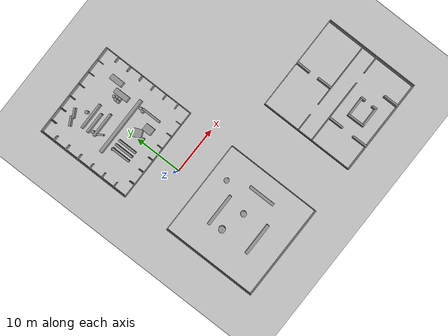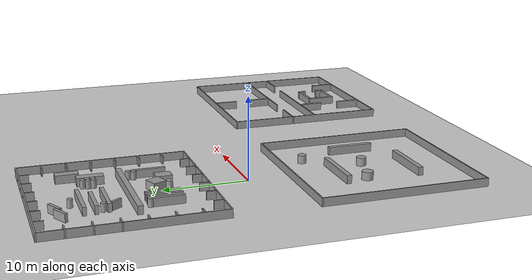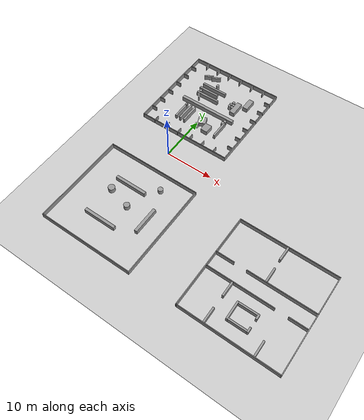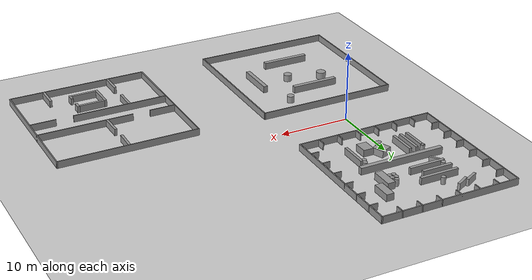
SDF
<sdf version="1.6">
 <world name="martha_training_islands">
  <include><uri>model://sun</uri></include>
  <include><uri>model://ground_plane</uri></include>
  <model name="hall__hall_obstacles">
   <pose>0 15 0 0 0 0</pose>
   <static>true</static>
   <link name="body">
    <collision name="col_0">
     <pose>0.0000 -10.0000 0.5000 0 0 0.00000</pose>
     <geometry><box><size>20.1500 0.1500 1.0000</size></box></geometry>
    </collision>
    <visual name="vis_0">
     <pose>0.0000 -10.0000 0.5000 0 0 0.00000</pose>
     <geometry><box><size>20.1500 0.1500 1.0000</size></box></geometry>
     <material>
      <script><uri>file://media/materials/scripts/gazebo.material</uri><name>Gazebo/Grey</name></script>
     </material>
    </visual>
    <collision name="col_1">
     <pose>10.0000 0.0000 0.5000 0 0 1.57080</pose>
     <geometry><box><size>20.1500 0.1500 1.0000</size></box></geometry>
    </collision>
    <visual name="vis_1">
     <pose>10.0000 0.0000 0.5000 0 0 1.57080</pose>
     <geometry><box><size>20.1500 0.1500 1.0000</size></box></geometry>
     <material>
      <script><uri>file://media/materials/scripts/gazebo.material</uri><name>Gazebo/Grey</name></script>
     </material>
    </visual>
    <collision name="col_2">
     <pose>0.0000 10.0000 0.5000 0 0 3.14159</pose>
     <geometry><box><size>20.1500 0.1500 1.0000</size></box></geometry>
    </collision>
    <visual name="vis_2">
     <pose>0.0000 10.0000 0.5000 0 0 3.14159</pose>
     <geometry><box><size>20.1500 0.1500 1.0000</size></box></geometry>
     <material>
      <script><uri>file://media/materials/scripts/gazebo.material</uri><name>Gazebo/Grey</name></script>
     </material>
    </visual>
    <collision name="col_3">
     <pose>-10.0000 0.0000 0.5000 0 0 -1.57080</pose>
     <geometry><box><size>20.1500 0.1500 1.0000</size></box></geometry>
    </collision>
    <visual name="vis_3">
     <pose>-10.0000 0.0000 0.5000 0 0 -1.57080</pose>
     <geometry><box><size>20.1500 0.1500 1.0000</size></box></geometry>
     <material>
      <script><uri>file://media/materials/scripts/gazebo.material</uri><name>Gazebo/Grey</name></script>
     </material>
    </visual>
    <collision name="col_4">
     <pose>-7.1429 -9.4500 0.5000 0 0 1.57080</pose>
     <geometry><box><size>1.2500 0.1500 1.0000</size></box></geometry>
    </collision>
    <visual name="vis_4">
     <pose>-7.1429 -9.4500 0.5000 0 0 1.57080</pose>
     <geometry><box><size>1.2500 0.1500 1.0000</size></box></geometry>
     <material>
      <script><uri>file://media/materials/scripts/gazebo.material</uri><name>Gazebo/Grey</name></script>
     </material>
    </visual>
    <collision name="col_5">
     <pose>-7.1429 9.4500 0.5000 0 0 -1.57080</pose>
     <geometry><box><size>1.2500 0.1500 1.0000</size></box></geometry>
    </collision>
    <visual name="vis_5">
     <pose>-7.1429 9.4500 0.5000 0 0 -1.57080</pose>
     <geometry><box><size>1.2500 0.1500 1.0000</size></box></geometry>
     <material>
      <script><uri>file://media/materials/scripts/gazebo.material</uri><name>Gazebo/Grey</name></script>
     </material>
    </visual>
    <collision name="col_6">
     <pose>-9.4500 -7.1429 0.5000 0 0 0.00000</pose>
     <geometry><box><size>1.2500 0.1500 1.0000</size></box></geometry>
    </collision>
    <visual name="vis_6">
     <pose>-9.4500 -7.1429 0.5000 0 0 0.00000</pose>
     <geometry><box><size>1.2500 0.1500 1.0000</size></box></geometry>
     <material>
      <script><uri>file://media/materials/scripts/gazebo.material</uri><name>Gazebo/Grey</name></script>
     </material>
    </visual>
    <collision name="col_7">
     <pose>9.4500 -7.1429 0.5000 0 0 3.14159</pose>
     <geometry><box><size>1.2500 0.1500 1.0000</size></box></geometry>
    </collision>
    <visual name="vis_7">
     <pose>9.4500 -7.1429 0.5000 0 0 3.14159</pose>
     <geometry><box><size>1.2500 0.1500 1.0000</size></box></geometry>
     <material>
      <script><uri>file://media/materials/scripts/gazebo.material</uri><name>Gazebo/Grey</name></script>
     </material>
    </visual>
    <collision name="col_8">
     <pose>-4.2857 -9.4500 0.5000 0 0 1.57080</pose>
     <geometry><box><size>1.2500 0.1500 1.0000</size></box></geometry>
    </collision>
    <visual name="vis_8">
     <pose>-4.2857 -9.4500 0.5000 0 0 1.57080</pose>
     <geometry><box><size>1.2500 0.1500 1.0000</size></box></geometry>
     <material>
      <script><uri>file://media/materials/scripts/gazebo.material</uri><name>Gazebo/Grey</name></script>
     </material>
    </visual>
    <collision name="col_9">
     <pose>-4.2857 9.4500 0.5000 0 0 -1.57080</pose>
     <geometry><box><size>1.2500 0.1500 1.0000</size></box></geometry>
    </collision>
    <visual name="vis_9">
     <pose>-4.2857 9.4500 0.5000 0 0 -1.57080</pose>
     <geometry><box><size>1.2500 0.1500 1.0000</size></box></geometry>
     <material>
      <script><uri>file://media/materials/scripts/gazebo.material</uri><name>Gazebo/Grey</name></script>
     </material>
    </visual>
    <collision name="col_10">
     <pose>-9.4500 -4.2857 0.5000 0 0 0.00000</pose>
     <geometry><box><size>1.2500 0.1500 1.0000</size></box></geometry>
    </collision>
    <visual name="vis_10">
     <pose>-9.4500 -4.2857 0.5000 0 0 0.00000</pose>
     <geometry><box><size>1.2500 0.1500 1.0000</size></box></geometry>
     <material>
      <script><uri>file://media/materials/scripts/gazebo.material</uri><name>Gazebo/Grey</name></script>
     </material>
    </visual>
    <collision name="col_11">
     <pose>9.4500 -4.2857 0.5000 0 0 3.14159</pose>
     <geometry><box><size>1.2500 0.1500 1.0000</size></box></geometry>
    </collision>
    <visual name="vis_11">
     <pose>9.4500 -4.2857 0.5000 0 0 3.14159</pose>
     <geometry><box><size>1.2500 0.1500 1.0000</size></box></geometry>
     <material>
      <script><uri>file://media/materials/scripts/gazebo.material</uri><name>Gazebo/Grey</name></script>
     </material>
    </visual>
    <collision name="col_12">
     <pose>-1.4286 -9.4500 0.5000 0 0 1.57080</pose>
     <geometry><box><size>1.2500 0.1500 1.0000</size></box></geometry>
    </collision>
    <visual name="vis_12">
     <pose>-1.4286 -9.4500 0.5000 0 0 1.57080</pose>
     <geometry><box><size>1.2500 0.1500 1.0000</size></box></geometry>
     <material>
      <script><uri>file://media/materials/scripts/gazebo.material</uri><name>Gazebo/Grey</name></script>
     </material>
    </visual>
    <collision name="col_13">
     <pose>-1.4286 9.4500 0.5000 0 0 -1.57080</pose>
     <geometry><box><size>1.2500 0.1500 1.0000</size></box></geometry>
    </collision>
    <visual name="vis_13">
     <pose>-1.4286 9.4500 0.5000 0 0 -1.57080</pose>
     <geometry><box><size>1.2500 0.1500 1.0000</size></box></geometry>
     <material>
      <script><uri>file://media/materials/scripts/gazebo.material</uri><name>Gazebo/Grey</name></script>
     </material>
    </visual>
    <collision name="col_14">
     <pose>-9.4500 -1.4286 0.5000 0 0 0.00000</pose>
     <geometry><box><size>1.2500 0.1500 1.0000</size></box></geometry>
    </collision>
    <visual name="vis_14">
     <pose>-9.4500 -1.4286 0.5000 0 0 0.00000</pose>
     <geometry><box><size>1.2500 0.1500 1.0000</size></box></geometry>
     <material>
      <script><uri>file://media/materials/scripts/gazebo.material</uri><name>Gazebo/Grey</name></script>
     </material>
    </visual>
    <collision name="col_15">
     <pose>9.4500 -1.4286 0.5000 0 0 3.14159</pose>
     <geometry><box><size>1.2500 0.1500 1.0000</size></box></geometry>
    </collision>
    <visual name="vis_15">
     <pose>9.4500 -1.4286 0.5000 0 0 3.14159</pose>
     <geometry><box><size>1.2500 0.1500 1.0000</size></box></geometry>
     <material>
      <script><uri>file://media/materials/scripts/gazebo.material</uri><name>Gazebo/Grey</name></script>
     </material>
    </visual>
    <collision name="col_16">
     <pose>1.4286 -9.4500 0.5000 0 0 1.57080</pose>
     <geometry><box><size>1.2500 0.1500 1.0000</size></box></geometry>
    </collision>
    <visual name="vis_16">
     <pose>1.4286 -9.4500 0.5000 0 0 1.57080</pose>
     <geometry><box><size>1.2500 0.1500 1.0000</size></box></geometry>
     <material>
      <script><uri>file://media/materials/scripts/gazebo.material</uri><name>Gazebo/Grey</name></script>
     </material>
    </visual>
    <collision name="col_17">
     <pose>1.4286 9.4500 0.5000 0 0 -1.57080</pose>
     <geometry><box><size>1.2500 0.1500 1.0000</size></box></geometry>
    </collision>
    <visual name="vis_17">
     <pose>1.4286 9.4500 0.5000 0 0 -1.57080</pose>
     <geometry><box><size>1.2500 0.1500 1.0000</size></box></geometry>
     <material>
      <script><uri>file://media/materials/scripts/gazebo.material</uri><name>Gazebo/Grey</name></script>
     </material>
    </visual>
    <collision name="col_18">
     <pose>-9.4500 1.4286 0.5000 0 0 0.00000</pose>
     <geometry><box><size>1.2500 0.1500 1.0000</size></box></geometry>
    </collision>
    <visual name="vis_18">
     <pose>-9.4500 1.4286 0.5000 0 0 0.00000</pose>
     <geometry><box><size>1.2500 0.1500 1.0000</size></box></geometry>
     <material>
      <script><uri>file://media/materials/scripts/gazebo.material</uri><name>Gazebo/Grey</name></script>
     </material>
    </visual>
    <collision name="col_19">
     <pose>9.4500 1.4286 0.5000 0 0 3.14159</pose>
     <geometry><box><size>1.2500 0.1500 1.0000</size></box></geometry>
    </collision>
    <visual name="vis_19">
     <pose>9.4500 1.4286 0.5000 0 0 3.14159</pose>
     <geometry><box><size>1.2500 0.1500 1.0000</size></box></geometry>
     <material>
      <script><uri>file://media/materials/scripts/gazebo.material</uri><name>Gazebo/Grey</name></script>
     </material>
    </visual>
    <collision name="col_20">
     <pose>4.2857 -9.4500 0.5000 0 0 1.57080</pose>
     <geometry><box><size>1.2500 0.1500 1.0000</size></box></geometry>
    </collision>
    <visual name="vis_20">
     <pose>4.2857 -9.4500 0.5000 0 0 1.57080</pose>
     <geometry><box><size>1.2500 0.1500 1.0000</size></box></geometry>
     <material>
      <script><uri>file://media/materials/scripts/gazebo.material</uri><name>Gazebo/Grey</name></script>
     </material>
    </visual>
    <collision name="col_21">
     <pose>4.2857 9.4500 0.5000 0 0 -1.57080</pose>
     <geometry><box><size>1.2500 0.1500 1.0000</size></box></geometry>
    </collision>
    <visual name="vis_21">
     <pose>4.2857 9.4500 0.5000 0 0 -1.57080</pose>
     <geometry><box><size>1.2500 0.1500 1.0000</size></box></geometry>
     <material>
      <script><uri>file://media/materials/scripts/gazebo.material</uri><name>Gazebo/Grey</name></script>
     </material>
    </visual>
    <collision name="col_22">
     <pose>-9.4500 4.2857 0.5000 0 0 0.00000</pose>
     <geometry><box><size>1.2500 0.1500 1.0000</size></box></geometry>
    </collision>
    <visual name="vis_22">
     <pose>-9.4500 4.2857 0.5000 0 0 0.00000</pose>
     <geometry><box><size>1.2500 0.1500 1.0000</size></box></geometry>
     <material>
      <script><uri>file://media/materials/scripts/gazebo.material</uri><name>Gazebo/Grey</name></script>
     </material>
    </visual>
    <collision name="col_23">
     <pose>9.4500 4.2857 0.5000 0 0 3.14159</pose>
     <geometry><box><size>1.2500 0.1500 1.0000</size></box></geometry>
    </collision>
    <visual name="vis_23">
     <pose>9.4500 4.2857 0.5000 0 0 3.14159</pose>
     <geometry><box><size>1.2500 0.1500 1.0000</size></box></geometry>
     <material>
      <script><uri>file://media/materials/scripts/gazebo.material</uri><name>Gazebo/Grey</name></script>
     </material>
    </visual>
    <collision name="col_24">
     <pose>7.1429 -9.4500 0.5000 0 0 1.57080</pose>
     <geometry><box><size>1.2500 0.1500 1.0000</size></box></geometry>
    </collision>
    <visual name="vis_24">
     <pose>7.1429 -9.4500 0.5000 0 0 1.57080</pose>
     <geometry><box><size>1.2500 0.1500 1.0000</size></box></geometry>
     <material>
      <script><uri>file://media/materials/scripts/gazebo.material</uri><name>Gazebo/Grey</name></script>
     </material>
    </visual>
    <collision name="col_25">
     <pose>7.1429 9.4500 0.5000 0 0 -1.57080</pose>
     <geometry><box><size>1.2500 0.1500 1.0000</size></box></geometry>
    </collision>
    <visual name="vis_25">
     <pose>7.1429 9.4500 0.5000 0 0 -1.57080</pose>
     <geometry><box><size>1.2500 0.1500 1.0000</size></box></geometry>
     <material>
      <script><uri>file://media/materials/scripts/gazebo.material</uri><name>Gazebo/Grey</name></script>
     </material>
    </visual>
    <collision name="col_26">
     <pose>-9.4500 7.1429 0.5000 0 0 0.00000</pose>
     <geometry><box><size>1.2500 0.1500 1.0000</size></box></geometry>
    </collision>
    <visual name="vis_26">
     <pose>-9.4500 7.1429 0.5000 0 0 0.00000</pose>
     <geometry><box><size>1.2500 0.1500 1.0000</size></box></geometry>
     <material>
      <script><uri>file://media/materials/scripts/gazebo.material</uri><name>Gazebo/Grey</name></script>
     </material>
    </visual>
    <collision name="col_27">
     <pose>9.4500 7.1429 0.5000 0 0 3.14159</pose>
     <geometry><box><size>1.2500 0.1500 1.0000</size></box></geometry>
    </collision>
    <visual name="vis_27">
     <pose>9.4500 7.1429 0.5000 0 0 3.14159</pose>
     <geometry><box><size>1.2500 0.1500 1.0000</size></box></geometry>
     <material>
      <script><uri>file://media/materials/scripts/gazebo.material</uri><name>Gazebo/Grey</name></script>
     </material>
    </visual>
    <collision name="col_28">
     <pose>0.0000 -1.2000 0.5000 0 0 0.00000</pose>
     <geometry><box><size>12.4000 0.6400 1.0000</size></box></geometry>
    </collision>
    <visual name="vis_28">
     <pose>0.0000 -1.2000 0.5000 0 0 0.00000</pose>
     <geometry><box><size>12.4000 0.6400 1.0000</size></box></geometry>
     <material>
      <script><uri>file://media/materials/scripts/gazebo.material</uri><name>Gazebo/Grey</name></script>
     </material>
    </visual>
    <collision name="col_29">
     <pose>-2.0000 4.4000 0.5000 0 0 0.00000</pose>
     <geometry><box><size>5.6000 0.4400 1.0000</size></box></geometry>
    </collision>
    <visual name="vis_29">
     <pose>-2.0000 4.4000 0.5000 0 0 0.00000</pose>
     <geometry><box><size>5.6000 0.4400 1.0000</size></box></geometry>
     <material>
      <script><uri>file://media/materials/scripts/gazebo.material</uri><name>Gazebo/Grey</name></script>
     </material>
    </visual>
    <collision name="col_30">
     <pose>-2.6000 3.1000 0.5000 0 0 0.00000</pose>
     <geometry><box><size>4.4000 0.4400 1.0000</size></box></geometry>
    </collision>
    <visual name="vis_30">
     <pose>-2.6000 3.1000 0.5000 0 0 0.00000</pose>
     <geometry><box><size>4.4000 0.4400 1.0000</size></box></geometry>
     <material>
      <script><uri>file://media/materials/scripts/gazebo.material</uri><name>Gazebo/Grey</name></script>
     </material>
    </visual>
    <collision name="col_31">
     <pose>-2.0000 1.7000 0.5000 0 0 0.00000</pose>
     <geometry><box><size>5.2000 0.4400 1.0000</size></box></geometry>
    </collision>
    <visual name="vis_31">
     <pose>-2.0000 1.7000 0.5000 0 0 0.00000</pose>
     <geometry><box><size>5.2000 0.4400 1.0000</size></box></geometry>
     <material>
      <script><uri>file://media/materials/scripts/gazebo.material</uri><name>Gazebo/Grey</name></script>
     </material>
    </visual>
    <collision name="col_32">
     <pose>-5.1000 6.9000 0.5000 0 0 0.48869</pose>
     <geometry><box><size>2.0000 0.3600 1.0000</size></box></geometry>
    </collision>
    <visual name="vis_32">
     <pose>-5.1000 6.9000 0.5000 0 0 0.48869</pose>
     <geometry><box><size>2.0000 0.3600 1.0000</size></box></geometry>
     <material>
      <script><uri>file://media/materials/scripts/gazebo.material</uri><name>Gazebo/Grey</name></script>
     </material>
    </visual>
    <collision name="col_33">
     <pose>-3.5000 7.3000 0.5000 0 0 0.48869</pose>
     <geometry><box><size>2.0000 0.3600 1.0000</size></box></geometry>
    </collision>
    <visual name="vis_33">
     <pose>-3.5000 7.3000 0.5000 0 0 0.48869</pose>
     <geometry><box><size>2.0000 0.3600 1.0000</size></box></geometry>
     <material>
      <script><uri>file://media/materials/scripts/gazebo.material</uri><name>Gazebo/Grey</name></script>
     </material>
    </visual>
    <collision name="col_34">
     <pose>-3.7000 0.9000 0.5000 0 0 -0.95993</pose>
     <geometry><box><size>1.4000 0.3200 1.0000</size></box></geometry>
    </collision>
    <visual name="vis_34">
     <pose>-3.7000 0.9000 0.5000 0 0 -0.95993</pose>
     <geometry><box><size>1.4000 0.3200 1.0000</size></box></geometry>
     <material>
      <script><uri>file://media/materials/scripts/gazebo.material</uri><name>Gazebo/Grey</name></script>
     </material>
    </visual>
    <collision name="col_35">
     <pose>-4.3000 -4.5000 0.5000 0 0 0.00000</pose>
     <geometry><box><size>0.4000 4.0000 1.0000</size></box></geometry>
    </collision>
    <visual name="vis_35">
     <pose>-4.3000 -4.5000 0.5000 0 0 0.00000</pose>
     <geometry><box><size>0.4000 4.0000 1.0000</size></box></geometry>
     <material>
      <script><uri>file://media/materials/scripts/gazebo.material</uri><name>Gazebo/Grey</name></script>
     </material>
    </visual>
    <collision name="col_36">
     <pose>-3.3000 -4.5000 0.5000 0 0 0.00000</pose>
     <geometry><box><size>0.4000 4.0000 1.0000</size></box></geometry>
    </collision>
    <visual name="vis_36">
     <pose>-3.3000 -4.5000 0.5000 0 0 0.00000</pose>
     <geometry><box><size>0.4000 4.0000 1.0000</size></box></geometry>
     <material>
      <script><uri>file://media/materials/scripts/gazebo.material</uri><name>Gazebo/Grey</name></script>
     </material>
    </visual>
    <collision name="col_37">
     <pose>-2.3000 -4.5000 0.5000 0 0 0.00000</pose>
     <geometry><box><size>0.4000 4.0000 1.0000</size></box></geometry>
    </collision>
    <visual name="vis_37">
     <pose>-2.3000 -4.5000 0.5000 0 0 0.00000</pose>
     <geometry><box><size>0.4000 4.0000 1.0000</size></box></geometry>
     <material>
      <script><uri>file://media/materials/scripts/gazebo.material</uri><name>Gazebo/Grey</name></script>
     </material>
    </visual>
    <collision name="col_38">
     <pose>5.1000 -4.5000 0.5000 0 0 0.00000</pose>
     <geometry><box><size>0.4000 4.0000 1.0000</size></box></geometry>
    </collision>
    <visual name="vis_38">
     <pose>5.1000 -4.5000 0.5000 0 0 0.00000</pose>
     <geometry><box><size>0.4000 4.0000 1.0000</size></box></geometry>
     <material>
      <script><uri>file://media/materials/scripts/gazebo.material</uri><name>Gazebo/Grey</name></script>
     </material>
    </visual>
    <collision name="col_39">
     <pose>0.9000 -4.5000 0.5000 0 0 0.38397</pose>
     <geometry><box><size>1.7000 1.7000 1.0000</size></box></geometry>
    </collision>
    <visual name="vis_39">
     <pose>0.9000 -4.5000 0.5000 0 0 0.38397</pose>
     <geometry><box><size>1.7000 1.7000 1.0000</size></box></geometry>
     <material>
      <script><uri>file://media/materials/scripts/gazebo.material</uri><name>Gazebo/Grey</name></script>
     </material>
    </visual>
    <collision name="col_40">
     <pose>2.7000 -5.7000 0.5000 0 0 0.00000</pose>
     <geometry><box><size>1.5000 1.9000 1.0000</size></box></geometry>
    </collision>
    <visual name="vis_40">
     <pose>2.7000 -5.7000 0.5000 0 0 0.00000</pose>
     <geometry><box><size>1.5000 1.9000 1.0000</size></box></geometry>
     <material>
      <script><uri>file://media/materials/scripts/gazebo.material</uri><name>Gazebo/Grey</name></script>
     </material>
    </visual>
    <collision name="col_41">
     <pose>4.7000 2.3000 0.5000 0 0 0.00000</pose>
     <geometry><box><size>1.1000 3.1000 1.0000</size></box></geometry>
    </collision>
    <visual name="vis_41">
     <pose>4.7000 2.3000 0.5000 0 0 0.00000</pose>
     <geometry><box><size>1.1000 3.1000 1.0000</size></box></geometry>
     <material>
      <script><uri>file://media/materials/scripts/gazebo.material</uri><name>Gazebo/Grey</name></script>
     </material>
    </visual>
    <collision name="col_42">
     <pose>6.3000 4.7000 0.5000 0 0 0.00000</pose>
     <geometry><box><size>1.1000 2.7000 1.0000</size></box></geometry>
    </collision>
    <visual name="vis_42">
     <pose>6.3000 4.7000 0.5000 0 0 0.00000</pose>
     <geometry><box><size>1.1000 2.7000 1.0000</size></box></geometry>
     <material>
      <script><uri>file://media/materials/scripts/gazebo.material</uri><name>Gazebo/Grey</name></script>
     </material>
    </visual>
    <collision name="col_43">
     <pose>-1.9000 5.5000 0.5000 0 0 0.00000</pose>
     <geometry><cylinder><radius>0.3200</radius><length>1.0000</length></cylinder></geometry>
    </collision>
    <visual name="vis_43">
     <pose>-1.9000 5.5000 0.5000 0 0 0.00000</pose>
     <geometry><cylinder><radius>0.3200</radius><length>1.0000</length></cylinder></geometry>
     <material>
      <script><uri>file://media/materials/scripts/gazebo.material</uri><name>Gazebo/Grey</name></script>
     </material>
    </visual>
    <collision name="col_44">
     <pose>-4.1000 2.3000 0.5000 0 0 0.00000</pose>
     <geometry><cylinder><radius>0.3200</radius><length>1.0000</length></cylinder></geometry>
    </collision>
    <visual name="vis_44">
     <pose>-4.1000 2.3000 0.5000 0 0 0.00000</pose>
     <geometry><cylinder><radius>0.3200</radius><length>1.0000</length></cylinder></geometry>
     <material>
      <script><uri>file://media/materials/scripts/gazebo.material</uri><name>Gazebo/Grey</name></script>
     </material>
    </visual>
    <collision name="col_45">
     <pose>-4.3000 -2.7000 0.5000 0 0 0.00000</pose>
     <geometry><cylinder><radius>0.3200</radius><length>1.0000</length></cylinder></geometry>
    </collision>
    <visual name="vis_45">
     <pose>-4.3000 -2.7000 0.5000 0 0 0.00000</pose>
     <geometry><cylinder><radius>0.3200</radius><length>1.0000</length></cylinder></geometry>
     <material>
      <script><uri>file://media/materials/scripts/gazebo.material</uri><name>Gazebo/Grey</name></script>
     </material>
    </visual>
    <collision name="col_46">
     <pose>0.5000 -5.9000 0.5000 0 0 0.00000</pose>
     <geometry><cylinder><radius>0.4000</radius><length>1.0000</length></cylinder></geometry>
    </collision>
    <visual name="vis_46">
     <pose>0.5000 -5.9000 0.5000 0 0 0.00000</pose>
     <geometry><cylinder><radius>0.4000</radius><length>1.0000</length></cylinder></geometry>
     <material>
      <script><uri>file://media/materials/scripts/gazebo.material</uri><name>Gazebo/Grey</name></script>
     </material>
    </visual>
    <collision name="col_47">
     <pose>4.7000 -2.7000 0.5000 0 0 0.00000</pose>
     <geometry><cylinder><radius>0.3200</radius><length>1.0000</length></cylinder></geometry>
    </collision>
    <visual name="vis_47">
     <pose>4.7000 -2.7000 0.5000 0 0 0.00000</pose>
     <geometry><cylinder><radius>0.3200</radius><length>1.0000</length></cylinder></geometry>
     <material>
      <script><uri>file://media/materials/scripts/gazebo.material</uri><name>Gazebo/Grey</name></script>
     </material>
    </visual>
    <collision name="col_48">
     <pose>4.9000 -2.1000 0.5000 0 0 0.00000</pose>
     <geometry><cylinder><radius>0.3200</radius><length>1.0000</length></cylinder></geometry>
    </collision>
    <visual name="vis_48">
     <pose>4.9000 -2.1000 0.5000 0 0 0.00000</pose>
     <geometry><cylinder><radius>0.3200</radius><length>1.0000</length></cylinder></geometry>
     <material>
      <script><uri>file://media/materials/scripts/gazebo.material</uri><name>Gazebo/Grey</name></script>
     </material>
    </visual>
    <collision name="col_49">
     <pose>3.3000 2.1000 0.5000 0 0 0.00000</pose>
     <geometry><cylinder><radius>0.3000</radius><length>1.0000</length></cylinder></geometry>
    </collision>
    <visual name="vis_49">
     <pose>3.3000 2.1000 0.5000 0 0 0.00000</pose>
     <geometry><cylinder><radius>0.3000</radius><length>1.0000</length></cylinder></geometry>
     <material>
      <script><uri>file://media/materials/scripts/gazebo.material</uri><name>Gazebo/Grey</name></script>
     </material>
    </visual>
    <collision name="col_50">
     <pose>3.9000 2.1000 0.5000 0 0 0.00000</pose>
     <geometry><cylinder><radius>0.3000</radius><length>1.0000</length></cylinder></geometry>
    </collision>
    <visual name="vis_50">
     <pose>3.9000 2.1000 0.5000 0 0 0.00000</pose>
     <geometry><cylinder><radius>0.3000</radius><length>1.0000</length></cylinder></geometry>
     <material>
      <script><uri>file://media/materials/scripts/gazebo.material</uri><name>Gazebo/Grey</name></script>
     </material>
    </visual>
    <collision name="col_51">
     <pose>3.3000 2.7000 0.5000 0 0 0.00000</pose>
     <geometry><cylinder><radius>0.3000</radius><length>1.0000</length></cylinder></geometry>
    </collision>
    <visual name="vis_51">
     <pose>3.3000 2.7000 0.5000 0 0 0.00000</pose>
     <geometry><cylinder><radius>0.3000</radius><length>1.0000</length></cylinder></geometry>
     <material>
      <script><uri>file://media/materials/scripts/gazebo.material</uri><name>Gazebo/Grey</name></script>
     </material>
    </visual>
    <collision name="col_52">
     <pose>3.9000 2.7000 0.5000 0 0 0.00000</pose>
     <geometry><cylinder><radius>0.3000</radius><length>1.0000</length></cylinder></geometry>
    </collision>
    <visual name="vis_52">
     <pose>3.9000 2.7000 0.5000 0 0 0.00000</pose>
     <geometry><cylinder><radius>0.3000</radius><length>1.0000</length></cylinder></geometry>
     <material>
      <script><uri>file://media/materials/scripts/gazebo.material</uri><name>Gazebo/Grey</name></script>
     </material>
    </visual>
    <collision name="col_53">
     <pose>3.6000 3.3000 0.5000 0 0 0.00000</pose>
     <geometry><cylinder><radius>0.3000</radius><length>1.0000</length></cylinder></geometry>
    </collision>
    <visual name="vis_53">
     <pose>3.6000 3.3000 0.5000 0 0 0.00000</pose>
     <geometry><cylinder><radius>0.3000</radius><length>1.0000</length></cylinder></geometry>
     <material>
      <script><uri>file://media/materials/scripts/gazebo.material</uri><name>Gazebo/Grey</name></script>
     </material>
    </visual>
   </link>
  </model>
  <model name="room__room_obstacles">
   <pose>0 -15 0 0 0 0</pose>
   <static>true</static>
   <link name="body">
    <collision name="col_0">
     <pose>0.0000 -10.0000 0.5000 0 0 0.00000</pose>
     <geometry><box><size>20.1500 0.1500 1.0000</size></box></geometry>
    </collision>
    <visual name="vis_0">
     <pose>0.0000 -10.0000 0.5000 0 0 0.00000</pose>
     <geometry><box><size>20.1500 0.1500 1.0000</size></box></geometry>
     <material>
      <script><uri>file://media/materials/scripts/gazebo.material</uri><name>Gazebo/Grey</name></script>
     </material>
    </visual>
    <collision name="col_1">
     <pose>10.0000 0.0000 0.5000 0 0 1.57080</pose>
     <geometry><box><size>20.1500 0.1500 1.0000</size></box></geometry>
    </collision>
    <visual name="vis_1">
     <pose>10.0000 0.0000 0.5000 0 0 1.57080</pose>
     <geometry><box><size>20.1500 0.1500 1.0000</size></box></geometry>
     <material>
      <script><uri>file://media/materials/scripts/gazebo.material</uri><name>Gazebo/Grey</name></script>
     </material>
    </visual>
    <collision name="col_2">
     <pose>0.0000 10.0000 0.5000 0 0 3.14159</pose>
     <geometry><box><size>20.1500 0.1500 1.0000</size></box></geometry>
    </collision>
    <visual name="vis_2">
     <pose>0.0000 10.0000 0.5000 0 0 3.14159</pose>
     <geometry><box><size>20.1500 0.1500 1.0000</size></box></geometry>
     <material>
      <script><uri>file://media/materials/scripts/gazebo.material</uri><name>Gazebo/Grey</name></script>
     </material>
    </visual>
    <collision name="col_3">
     <pose>-10.0000 0.0000 0.5000 0 0 -1.57080</pose>
     <geometry><box><size>20.1500 0.1500 1.0000</size></box></geometry>
    </collision>
    <visual name="vis_3">
     <pose>-10.0000 0.0000 0.5000 0 0 -1.57080</pose>
     <geometry><box><size>20.1500 0.1500 1.0000</size></box></geometry>
     <material>
      <script><uri>file://media/materials/scripts/gazebo.material</uri><name>Gazebo/Grey</name></script>
     </material>
    </visual>
    <collision name="col_4">
     <pose>-1.0000 4.4000 0.5000 0 0 0.00000</pose>
     <geometry><box><size>6.8000 0.6000 1.0000</size></box></geometry>
    </collision>
    <visual name="vis_4">
     <pose>-1.0000 4.4000 0.5000 0 0 0.00000</pose>
     <geometry><box><size>6.8000 0.6000 1.0000</size></box></geometry>
     <material>
      <script><uri>file://media/materials/scripts/gazebo.material</uri><name>Gazebo/Grey</name></script>
     </material>
    </visual>
    <collision name="col_5">
     <pose>-1.0000 -4.6000 0.5000 0 0 0.00000</pose>
     <geometry><box><size>6.8000 0.6000 1.0000</size></box></geometry>
    </collision>
    <visual name="vis_5">
     <pose>-1.0000 -4.6000 0.5000 0 0 0.00000</pose>
     <geometry><box><size>6.8000 0.6000 1.0000</size></box></geometry>
     <material>
      <script><uri>file://media/materials/scripts/gazebo.material</uri><name>Gazebo/Grey</name></script>
     </material>
    </visual>
    <collision name="col_6">
     <pose>6.0000 -0.2000 0.5000 0 0 0.00000</pose>
     <geometry><box><size>0.6000 5.6000 1.0000</size></box></geometry>
    </collision>
    <visual name="vis_6">
     <pose>6.0000 -0.2000 0.5000 0 0 0.00000</pose>
     <geometry><box><size>0.6000 5.6000 1.0000</size></box></geometry>
     <material>
      <script><uri>file://media/materials/scripts/gazebo.material</uri><name>Gazebo/Grey</name></script>
     </material>
    </visual>
    <collision name="col_7">
     <pose>4.2000 6.8000 0.5000 0 0 0.00000</pose>
     <geometry><cylinder><radius>0.5200</radius><length>1.0000</length></cylinder></geometry>
    </collision>
    <visual name="vis_7">
     <pose>4.2000 6.8000 0.5000 0 0 0.00000</pose>
     <geometry><cylinder><radius>0.5200</radius><length>1.0000</length></cylinder></geometry>
     <material>
      <script><uri>file://media/materials/scripts/gazebo.material</uri><name>Gazebo/Grey</name></script>
     </material>
    </visual>
    <collision name="col_8">
     <pose>-3.6000 1.8000 0.5000 0 0 0.00000</pose>
     <geometry><cylinder><radius>0.6800</radius><length>1.0000</length></cylinder></geometry>
    </collision>
    <visual name="vis_8">
     <pose>-3.6000 1.8000 0.5000 0 0 0.00000</pose>
     <geometry><cylinder><radius>0.6800</radius><length>1.0000</length></cylinder></geometry>
     <material>
      <script><uri>file://media/materials/scripts/gazebo.material</uri><name>Gazebo/Grey</name></script>
     </material>
    </visual>
    <collision name="col_9">
     <pose>1.2000 0.4000 0.5000 0 0 0.00000</pose>
     <geometry><cylinder><radius>0.6000</radius><length>1.0000</length></cylinder></geometry>
    </collision>
    <visual name="vis_9">
     <pose>1.2000 0.4000 0.5000 0 0 0.00000</pose>
     <geometry><cylinder><radius>0.6000</radius><length>1.0000</length></cylinder></geometry>
     <material>
      <script><uri>file://media/materials/scripts/gazebo.material</uri><name>Gazebo/Grey</name></script>
     </material>
    </visual>
   </link>
  </model>
  <model name="tube__tube_obstacles">
   <pose>30 -15 0 0 0 0</pose>
   <static>1</static>
   <link name="body">
    <collision name="col_0">
     <pose>0 -10 0.5 0 -0 0</pose>
     <geometry><box><size>20.15 0.15 1</size></box></geometry>
    </collision>
    <visual name="vis_0">
     <pose>0 -10 0.5 0 -0 0</pose>
     <geometry><box><size>20.15 0.15 1</size></box></geometry>
     <material>
      <script><uri>file://media/materials/scripts/gazebo.material</uri><name>Gazebo/Grey</name></script>
     </material>
    </visual>
    <collision name="col_1">
     <pose>10 0 0.5 0 -0 1.5708</pose>
     <geometry><box><size>20.15 0.15 1</size></box></geometry>
    </collision>
    <visual name="vis_1">
     <pose>10 0 0.5 0 -0 1.5708</pose>
     <geometry><box><size>20.15 0.15 1</size></box></geometry>
     <material>
      <script><uri>file://media/materials/scripts/gazebo.material</uri><name>Gazebo/Grey</name></script>
     </material>
    </visual>
    <collision name="col_2">
     <pose>0 10 0.5 0 -0 3.14159</pose>
     <geometry><box><size>20.15 0.15 1</size></box></geometry>
    </collision>
    <visual name="vis_2">
     <pose>0 10 0.5 0 -0 3.14159</pose>
     <geometry><box><size>20.15 0.15 1</size></box></geometry>
     <material>
      <script><uri>file://media/materials/scripts/gazebo.material</uri><name>Gazebo/Grey</name></script>
     </material>
    </visual>
    <collision name="col_3">
     <pose>-10 0 0.5 0 0 -1.5708</pose>
     <geometry><box><size>20.15 0.15 1</size></box></geometry>
    </collision>
    <visual name="vis_3">
     <pose>-10 0 0.5 0 0 -1.5708</pose>
     <geometry><box><size>20.15 0.15 1</size></box></geometry>
     <material>
      <script><uri>file://media/materials/scripts/gazebo.material</uri><name>Gazebo/Grey</name></script>
     </material>
    </visual>
    <collision name="col_4_left">
     <pose>-8.1625 2 0.5 0 -0 0</pose>
     <geometry><box><size>3.825 0.15 1</size></box></geometry>
    </collision>
    <visual name="vis_4_left">
     <pose>-8.1625 2 0.5 0 -0 0</pose>
     <geometry><box><size>3.825 0.15 1</size></box></geometry>
     <material>
      <script><uri>file://media/materials/scripts/gazebo.material</uri><name>Gazebo/Grey</name></script>
     </material>
    </visual>
    <collision name="col_4_right">
     <pose>3.1625 2 0.5 0 -0 0</pose>
     <geometry><box><size>13.825 0.15 1</size></box></geometry>
    </collision>
    <visual name="vis_4_right">
     <pose>3.1625 2 0.5 0 -0 0</pose>
     <geometry><box><size>13.825 0.15 1</size></box></geometry>
     <material>
      <script><uri>file://media/materials/scripts/gazebo.material</uri><name>Gazebo/Grey</name></script>
     </material>
    </visual>
    <collision name="col_5_left">
     <pose>-3.1625 -1.2 0.5 0 -0 0</pose>
     <geometry><box><size>13.825 0.15 1</size></box></geometry>
    </collision>
    <visual name="vis_5_left">
     <pose>-3.1625 -1.2 0.5 0 -0 0</pose>
     <geometry><box><size>13.825 0.15 1</size></box></geometry>
     <material>
      <script><uri>file://media/materials/scripts/gazebo.material</uri><name>Gazebo/Grey</name></script>
     </material>
    </visual>
    <collision name="col_5_right">
     <pose>8.1625 -1.2 0.5 0 -0 0</pose>
     <geometry><box><size>3.825 0.15 1</size></box></geometry>
    </collision>
    <visual name="vis_5_right">
     <pose>8.1625 -1.2 0.5 0 -0 0</pose>
     <geometry><box><size>3.825 0.15 1</size></box></geometry>
     <material>
      <script><uri>file://media/materials/scripts/gazebo.material</uri><name>Gazebo/Grey</name></script>
     </material>
    </visual>
   </link>
  </model>
  <model name="tube__manual_wall_upper_1">
   <static>1</static>
   <pose>29.942181 -6.53793 0.5 0 0 -0.019242</pose>
   <link name="link">
    <collision name="collision"><geometry><box><size>0.356011 2.95948078 1</size></box></geometry></collision>
    <visual name="visual">
     <geometry><box><size>0.356011 2.95948078 1</size></box></geometry>
     <material>
      <script><uri>file://media/materials/scripts/gazebo.material</uri><name>Gazebo/Grey</name></script>
     </material>
    </visual>
   </link>
  </model>
  <model name="tube__manual_wall_upper_2">
   <static>1</static>
   <pose>30.03956 -11.40492 0.5 0 -0 0.011815</pose>
   <link name="link">
    <collision name="collision"><geometry><box><size>0.356011 3.05764 1</size></box></geometry></collision>
    <visual name="visual">
     <geometry><box><size>0.356011 3.05764 1</size></box></geometry>
     <material>
      <script><uri>file://media/materials/scripts/gazebo.material</uri><name>Gazebo/Grey</name></script>
     </material>
    </visual>
   </link>
  </model>
  <model name="tube__manual_wall_lower_left">
   <static>1</static>
   <pose>28.14732 -20.45434 0.5 0 -0 0.018171</pose>
   <link name="link">
    <collision name="collision"><geometry><box><size>0.356011 3.68816 1</size></box></geometry></collision>
    <visual name="visual">
     <geometry><box><size>0.356011 3.68816 1</size></box></geometry>
     <material>
      <script><uri>file://media/materials/scripts/gazebo.material</uri><name>Gazebo/Grey</name></script>
     </material>
    </visual>
   </link>
  </model>
  <model name="tube__manual_wall_lower_top">
   <static>1</static>
   <pose>30.123353 -18.75177 0.5 0 0 -1.55785</pose>
   <link name="link">
    <collision name="collision"><geometry><box><size>0.356011 3.68816 1</size></box></geometry></collision>
    <visual name="visual">
     <geometry><box><size>0.356011 3.68816 1</size></box></geometry>
     <material>
      <script><uri>file://media/materials/scripts/gazebo.material</uri><name>Gazebo/Grey</name></script>
     </material>
    </visual>
   </link>
  </model>
  <model name="tube__manual_wall_lower_bottom">
   <static>1</static>
   <pose>30.175934 -22.09871 0.5 0 0 -1.5636</pose>
   <link name="link">
    <collision name="collision"><geometry><box><size>0.356011 3.68816 1</size></box></geometry></collision>
    <visual name="visual">
     <geometry><box><size>0.356011 3.68816 1</size></box></geometry>
     <material>
      <script><uri>file://media/materials/scripts/gazebo.material</uri><name>Gazebo/Grey</name></script>
     </material>
    </visual>
   </link>
  </model>
  <model name="tube__manual_wall_far_left_bottom">
   <static>1</static>
   <pose>25.43332 -23.38865 0.5 0 -0 0.006046</pose>
   <link name="link">
    <collision name="collision"><geometry><box><size>0.356011 3.05764 1</size></box></geometry></collision>
    <visual name="visual">
     <geometry><box><size>0.356011 3.05764 1</size></box></geometry>
     <material>
      <script><uri>file://media/materials/scripts/gazebo.material</uri><name>Gazebo/Grey</name></script>
     </material>
    </visual>
   </link>
  </model>
  <model name="tube__manual_wall_far_left_mid">
   <static>1</static>
   <pose>25.48656 -17.80465 0.5 0 -0 0.001231</pose>
   <link name="link">
    <collision name="collision"><geometry><box><size>0.356011 3.05764 1</size></box></geometry></collision>
    <visual name="visual">
     <geometry><box><size>0.356011 3.05764 1</size></box></geometry>
     <material>
      <script><uri>file://media/materials/scripts/gazebo.material</uri><name>Gazebo/Grey</name></script>
     </material>
    </visual>
   </link>
  </model>
  <model name="tube__manual_wall_far_right_bottom">
   <static>1</static>
   <pose>35.06515 -23.38892 0.5 0 -0 0.002627</pose>
   <link name="link">
    <collision name="collision"><geometry><box><size>0.356011 3.05764 1</size></box></geometry></collision>
    <visual name="visual">
     <geometry><box><size>0.356011 3.05764 1</size></box></geometry>
     <material>
      <script><uri>file://media/materials/scripts/gazebo.material</uri><name>Gazebo/Grey</name></script>
     </material>
    </visual>
   </link>
  </model>
  <model name="tube__manual_wall_lower_right_upper">
   <static>1</static>
   <pose>32.14387 -19.05663 0.5 0 -0 0.006429</pose>
   <link name="link">
    <collision name="collision"><geometry><box><size>0.356011 1.04408 1</size></box></geometry></collision>
    <visual name="visual">
     <geometry><box><size>0.356011 1.04408 1</size></box></geometry>
     <material>
      <script><uri>file://media/materials/scripts/gazebo.material</uri><name>Gazebo/Grey</name></script>
     </material>
    </visual>
   </link>
  </model>
  <model name="tube__manual_wall_lower_right_lower">
   <static>1</static>
   <pose>32.14525 -21.74106 0.5 0 -0 0.006429</pose>
   <link name="link">
    <collision name="collision"><geometry><box><size>0.356011 1.04408 1</size></box></geometry></collision>
    <visual name="visual">
     <geometry><box><size>0.356011 1.04408 1</size></box></geometry>
     <material>
      <script><uri>file://media/materials/scripts/gazebo.material</uri><name>Gazebo/Grey</name></script>
     </material>
    </visual>
   </link>
  </model>
 </world>
</sdf>
